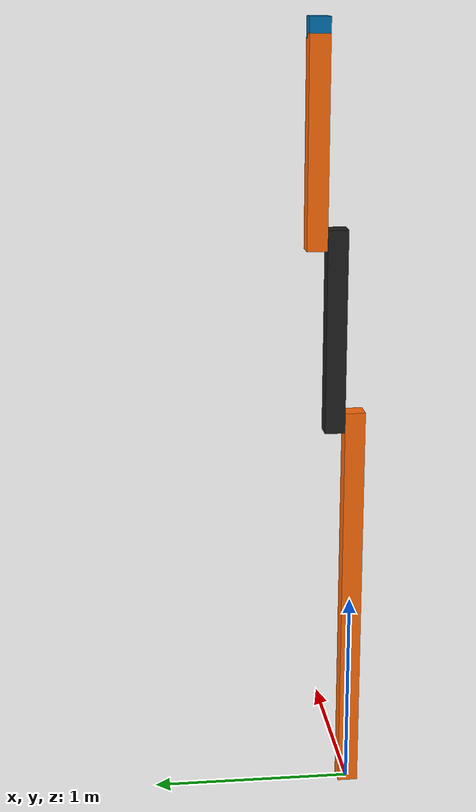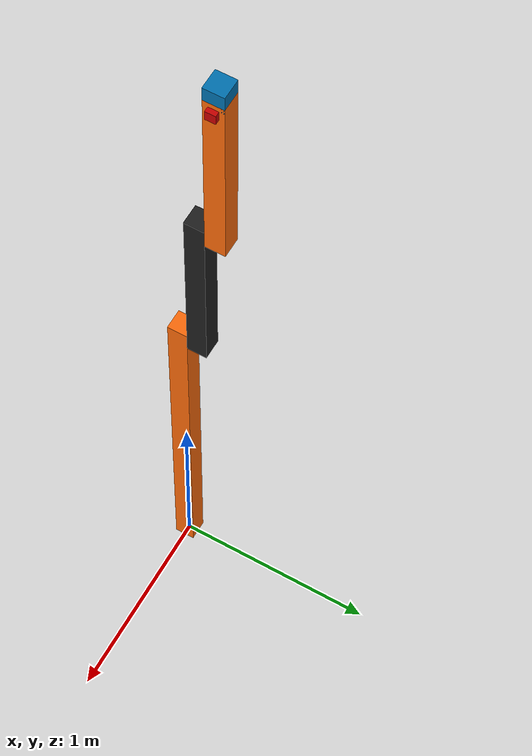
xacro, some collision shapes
<?xml version="1.0"?>
<!-- Modular robot modules -->
<robot name="mrs" xmlns:xacro="http://www.ros.org/wiki/xacro">

  <!-- Constants for robot dimensions -->
  <xacro:property name="PI" value="3.1415926535897931"/>
  <xacro:property name="width" value="0.1" /> <!-- Square dimensions (widthxwidth) of beams -->
  <xacro:property name="height1" value="2" /> <!-- Link 1 -->
  <xacro:property name="height2" value="1" /> <!-- Link 2 -->
  <xacro:property name="height3" value="1" /> <!-- Link 3 -->
  <xacro:property name="camera_link" value="0.05" /> <!-- Size of square 'camera' box -->
  <xacro:property name="axel_offset" value="0.05" /> <!-- Space btw top of beam and the each joint -->

  <!-- Import Rviz colors -->
  <xacro:include filename="$(find mrs_description)/urdf/materials.xacro" />

  <!-- Used for fixing robot to Gazebo 'base_link' -->
  <link name="world"/>

  <joint name="fixed" type="fixed">
    <parent link="world"/>
    <child link="link1"/>
  </joint>

  <!-- Base Link -->
  <link name="link1">
    <collision>
      <origin xyz="0 0 ${height1/2}" rpy="0 0 0"/>
      <geometry>
  <box size="${width} ${width} ${height1}"/>
      </geometry>
    </collision>

    <visual>
      <origin xyz="0 0 ${height1/2}" rpy="0 0 0"/>
      <geometry>
  <box size="${width} ${width} ${height1}"/>
      </geometry>
      <material name="orange"/>
    </visual>

    <inertial>
      <origin xyz="0 0 ${height1/2}" rpy="0 0 0"/>
      <mass value="1"/>
      <inertia
    ixx="1.0" ixy="0.0" ixz="0.0"
    iyy="1.0" iyz="0.0"
    izz="1.0"/>
    </inertial>
  </link>
  <gazebo reference="link1">
    <material>Gazebo/Orange</material>
  </gazebo>
    <gazebo>
    <plugin name="gazebo_ros_control" filename="libgazebo_ros_control.so">
      <robotNamespace>/rrbot</robotNamespace>
    </plugin>
  </gazebo>

  <!-- Link1 -->

  <!-- Link2 -->
  <gazebo reference="link2">
    <mu1>0.2</mu1>
    <mu2>0.2</mu2>
    <material>Gazebo/Black</material>
  </gazebo>

  <!-- Link3 -->
  <gazebo reference="link3">
    <mu1>0.2</mu1>
    <mu2>0.2</mu2>
    <material>Gazebo/Orange</material>
  </gazebo>

  <!-- camera_link -->
  <gazebo reference="camera_link">
    <mu1>0.2</mu1>
    <mu2>0.2</mu2>
    <material>Gazebo/Red</material>
  </gazebo>

  <joint name="joint1" type="continuous">
    <parent link="link1"/>
    <child link="link2"/>
    <origin xyz="0 ${width} ${height1 - axel_offset}" rpy="0 0 0"/>
    <axis xyz="0 1 0"/>
    <dynamics damping="0.7"/>
  </joint>

  <!-- Middle Link -->
  <link name="link2">
    <collision>
      <origin xyz="0 0 ${height2/2 - axel_offset}" rpy="0 0 0"/>
      <geometry>
  <box size="${width} ${width} ${height2}"/>
      </geometry>
    </collision>

    <visual>
      <origin xyz="0 0 ${height2/2 - axel_offset}" rpy="0 0 0"/>
      <geometry>
  <box size="${width} ${width} ${height2}"/>
      </geometry>
      <material name="black"/>
    </visual>

    <inertial>
      <origin xyz="0 0 ${height2/2 - axel_offset}" rpy="0 0 0"/>
      <mass value="1"/>
      <inertia
    ixx="1.0" ixy="0.0" ixz="0.0"
    iyy="1.0" iyz="0.0"
    izz="1.0"/>
    </inertial>
  </link>

  <joint name="joint2" type="continuous">
    <parent link="link2"/>
    <child link="link3"/>
    <origin xyz="0 ${width} ${height2 - axel_offset*2}" rpy="0 0 0"/>
    <axis xyz="0 1 0"/>
    <dynamics damping="0.7"/>
  </joint>

  <!-- Top Link -->
  <link name="link3">
    <collision>
      <origin xyz="0 0 ${height3/2 - axel_offset}" rpy="0 0 0"/>
      <geometry>
  <box size="${width} ${width} ${height3}"/>
      </geometry>
    </collision>

    <visual>
      <origin xyz="0 0 ${height3/2 - axel_offset}" rpy="0 0 0"/>
      <geometry>
  <box size="${width} ${width} ${height3}"/>
      </geometry>
      <material name="orange"/>
    </visual>

    <inertial>
      <origin xyz="0 0 ${height3/2 - axel_offset}" rpy="0 0 0"/>
      <mass value="1"/>
      <inertia
    ixx="1.0" ixy="0.0" ixz="0.0"
    iyy="1.0" iyz="0.0"
    izz="1.0"/>
    </inertial>
  </link>

  <joint name="hokuyo_joint" type="fixed">
    <axis xyz="0 1 0" />
    <origin xyz="0 0 ${height3 - axel_offset/2}" rpy="0 0 0"/>
    <parent link="link3"/>
    <child link="hokuyo_link"/>
  </joint>

  <!-- Hokuyo Laser -->
  <link name="hokuyo_link">
    <collision>
      <origin xyz="0 0 0" rpy="0 0 0"/>
      <geometry>
  <box size="0.1 0.1 0.1"/>
      </geometry>
    </collision>

    <visual>
      <origin xyz="0 0 0" rpy="0 0 0"/>
      <geometry>
        <mesh filename="package://rrbot_description/meshes/hokuyo.dae"/>
      </geometry>
    </visual>

    <inertial>
      <mass value="1e-5" />
      <origin xyz="0 0 0" rpy="0 0 0"/>
      <inertia ixx="1e-6" ixy="0" ixz="0" iyy="1e-6" iyz="0" izz="1e-6" />
    </inertial>
  </link>

  <joint name="camera_joint" type="fixed">
    <axis xyz="0 1 0" />
    <origin xyz="${camera_link} 0 ${height3 - axel_offset*2}" rpy="0 0 0"/>
    <parent link="link3"/>
    <child link="camera_link"/>
  </joint>

  <!-- Camera -->
  <link name="camera_link">
    <collision>
      <origin xyz="0 0 0" rpy="0 0 0"/>
      <geometry>
  <box size="${camera_link} ${camera_link} ${camera_link}"/>
      </geometry>
    </collision>

    <visual>
      <origin xyz="0 0 0" rpy="0 0 0"/>
      <geometry>
  <box size="${camera_link} ${camera_link} ${camera_link}"/>
      </geometry>
      <material name="red"/>
    </visual>

    <inertial>
      <mass value="1e-5" />
      <origin xyz="0 0 0" rpy="0 0 0"/>
      <inertia ixx="1e-6" ixy="0" ixz="0" iyy="1e-6" iyz="0" izz="1e-6" />
    </inertial>
  </link>

  <transmission name="tran1">
    <type>transmission_interface/SimpleTransmission</type>
    <joint name="joint1"/>
    <actuator name="motor1">
      <hardwareInterface>EffortJointInterface</hardwareInterface>
      <mechanicalReduction>1</mechanicalReduction>
    </actuator>
  </transmission>

  <transmission name="tran2">
    <type>transmission_interface/SimpleTransmission</type>
    <joint name="joint2"/>
    <actuator name="motor2">
      <hardwareInterface>EffortJointInterface</hardwareInterface>
      <mechanicalReduction>1</mechanicalReduction>
    </actuator>
  </transmission>

</robot>

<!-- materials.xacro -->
<robot>

  <material name="blue">
    <color rgba="0.0 0.0 0.8 1.0"/>
  </material>

  <material name="green">
    <color rgba="0.0 0.8 0.0 1.0"/>
  </material>

  <material name="grey">
    <color rgba="0.2 0.2 0.2 1.0"/>
  </material>

  <material name="orange">
    <color rgba="${255/255} ${108/255} ${10/255} 1.0"/>
  </material>

  <material name="brown">
    <color rgba="${222/255} ${207/255} ${195/255} 1.0"/>
  </material>

  <material name="red">
    <color rgba="0.8 0.0 0.0 1.0"/>
  </material>

  <material name="white">
    <color rgba="1.0 1.0 1.0 1.0"/>
  </material>

</robot>
